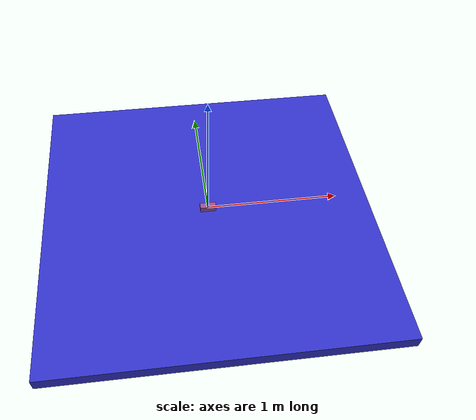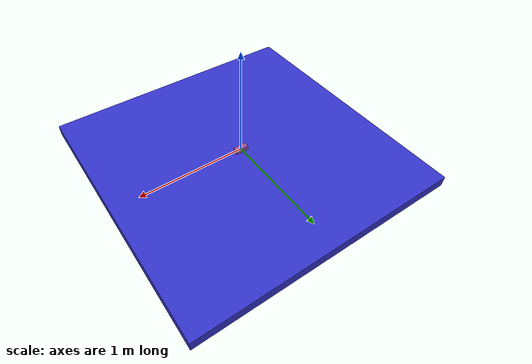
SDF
<?xml version='1.0'?>
<sdf version='1.6'>
  <model name='box2d'>
    <pose>0.0 0 0.0 0 0 0.</pose>
    <joint name='vertical_dof' type='prismatic'>
      <parent>world</parent>
      <child>x_translate_link</child>
      <pose frame=''>0 0 0 0 0 0</pose>
      <axis>
        <xyz>0 0 1</xyz>
        <use_parent_model_frame>0</use_parent_model_frame>
        <!-- Drake attaches an actuator to all joints with a non-zero effort
             limit. We do want an actuator for this joint. (gravity) -->
        <limit>
          <effort>500</effort>
        </limit>
      </axis>
    </joint>
    <link name='x_translate_link'>
      <pose frame=''>0 0 0 0 -0 0</pose>
      <inertial>
        <mass>0.000001</mass>
        <inertia>
          <ixx>0.000001</ixx>
          <ixy>0</ixy>
          <ixz>0</ixz>
          <iyy>0.000001</iyy>
          <iyz>0</iyz>
          <izz>0.000001</izz>
        </inertia>
        <pose frame=''>0 0 0 0 -0 0</pose>
      </inertial>
    </link>
    <joint name='x_translate_dof' type='prismatic'>
      <parent>x_translate_link</parent>
      <child>moving_box</child>
      <pose frame=''>0 0 0 0 0 0</pose>
      <axis>
        <xyz>1 0 0</xyz>
        <use_parent_model_frame>0</use_parent_model_frame>
        <!-- Drake attaches an actuator to all joints with a non-zero effort
             limit. We do want an actuator for this joint. -->
        <limit>
          <effort>500</effort>
        </limit>
      </axis>
    </joint>
    <link name='moving_box'>
      <pose frame=''>0.000 0.000 0 0 -0 0</pose>
      <inertial>
        <mass>0.33</mass>
        <inertia>
          <ixx>0.000141377</ixx>
          <ixy>0</ixy>
          <ixz>0</ixz>
          <iyy>0.000466688</iyy>
          <iyz>0</iyz>
          <izz>0.000466688</izz>
        </inertia>
        <pose frame=''>0 0 0 0 -0 0</pose>
      </inertial>
      <visual name='moving_box_visual'>
        <pose frame=''>0 0 0 0 -0 0</pose>
        <geometry>
          <box>
            <size>0.12 0.0507 0.0507</size>
          </box>
        </geometry>
        <material name="purple">
          <ambient> 0.6 0.3 0.6 1</ambient>
          <diffuse> 0.6 0.3 0.6 1</diffuse>
        </material>
      </visual>
      <collision name='moving_box_collision'>
        <pose frame=''>0 0 0 0 -0 0</pose>
        <geometry>
          <box>
            <size>0.12 0.0507 0.0507</size>
          </box>
        </geometry>

        <surface>
          <friction>
            <ode>
              <mu>1</mu>
              <mu2>1</mu2>
            </ode>
          </friction>
        </surface>
      </collision>
    </link>
    <joint name='weld_base' type='fixed'>
      <parent>world</parent>
      <child>base_box</child>
      <pose>0 0 0 0 0 0</pose>
    </joint>
    <link name='base_box'>
      <pose frame=''>0.000 0.0 -0.070415406 0 -0 0</pose>
      <!-- right height for penetration allowance 10 -->
      <inertial>
        <mass>668.75</mass>
        <inertia>
          <ixx>348.864583333</ixx>
          <ixy>0</ixy>
          <ixz>0</ixz>
          <iyy>348.864583333</iyy>
          <iyz>0</iyz>
          <izz>696.614583333</izz>
        </inertia>
        <pose frame=''>0 0 0 0 -0 0</pose>
      </inertial>
      <visual name='base_box_visual'>
        <pose frame=''>0 0 0 0 -0 0</pose>
        <geometry>
          <box>
            <size>2.5 2.5 0.1</size>
          </box>
        </geometry>
        <material name="blue">
          <ambient> 0.2 0.2 0.8 1</ambient>
          <diffuse> 0.2 0.2 0.8 1</diffuse>
        </material>
      </visual>
      <collision name='base_box_collision'>
        <pose frame=''>0 0 0 0 -0 0</pose>
        <geometry>
          <box>
            <size>2.5 2.5 0.1</size>
          </box>
        </geometry>

        <surface>
          <friction>
            <ode>
              <mu>1</mu>
              <mu2>1</mu2>
            </ode>
          </friction>
        </surface>
      </collision>
    </link>
  </model>

</sdf>
